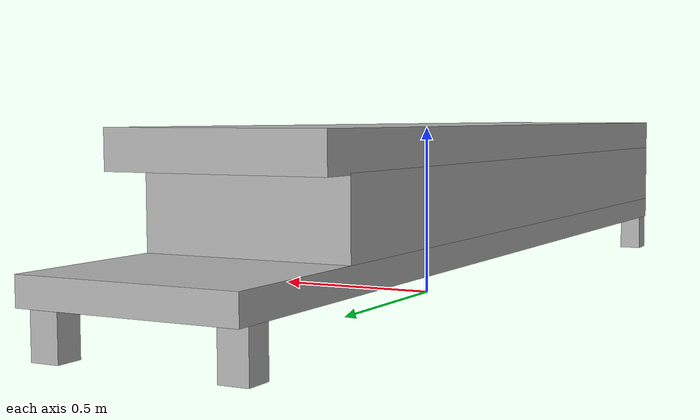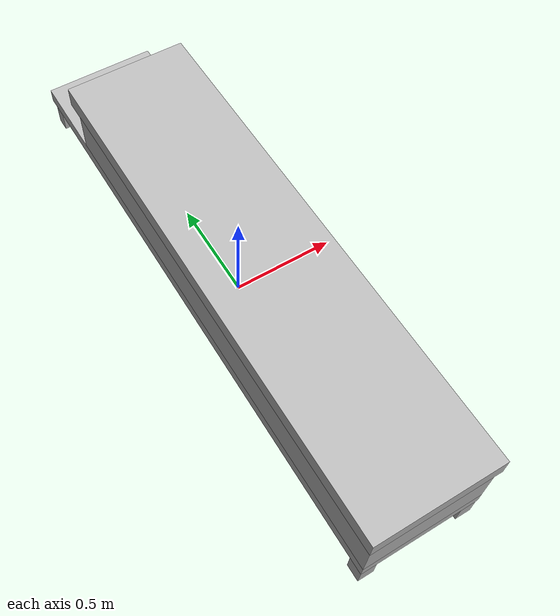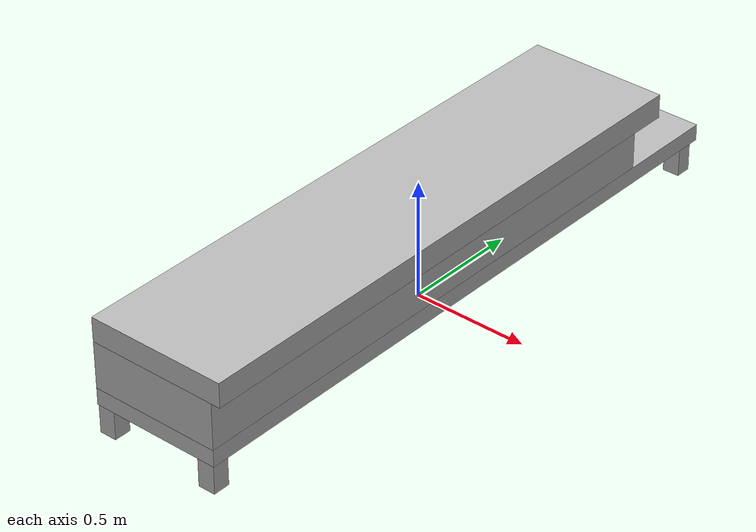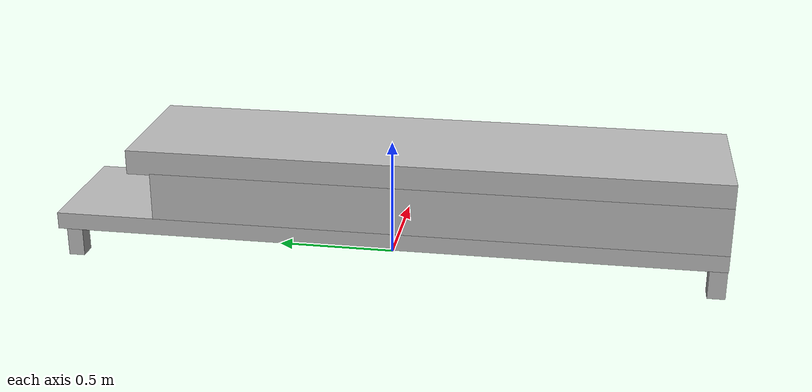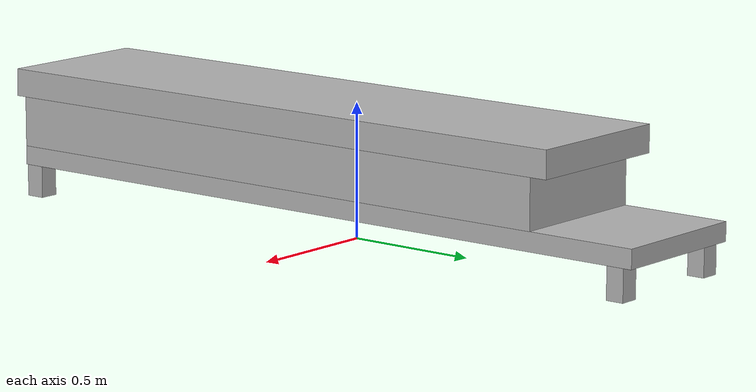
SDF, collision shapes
<?xml version="1.0" ?>
<sdf version="1.6">
  <model name="aws_robomaker_residential_TVCabinet_01">
    <link name="link">

      <inertial>
        <mass>59.2</mass>

        <inertia>
          <ixx>30.4</ixx>
          <ixy>0</ixy>
          <ixz>0</ixz>
          <iyy>2.56</iyy>
          <iyz>0</iyz>
          <izz>31.38</izz>
        </inertia>

      </inertial>

      <collision name="aws_tvcabinet_01_collision_collider_box">
        <pose>-0.01158 0.001218 0.173305 0.0 -0.0 0.0</pose>
        <geometry>
          <box>
            <size>0.559922 2.796524 0.071322</size>
          </box>
        </geometry>
      </collision>
      <collision name="aws_tvcabinet_01_collision_collider_box.001">
        <pose>-0.01158 -0.210066 0.310106 0.0 -0.0 0.0</pose>
        <geometry>
          <box>
            <size>0.559922 2.373957 0.203026</size>
          </box>
        </geometry>
      </collision>
      <collision name="aws_tvcabinet_01_collision_collider_box.002">
        <pose>0.009077 -0.161338 0.458343 0.0 -0.0 0.0</pose>
        <geometry>
          <box>
            <size>0.601235 2.471413 0.102932</size>
          </box>
        </geometry>
      </collision>
      <collision name="aws_tvcabinet_01_collision_collider_box.003">
        <pose>-0.250972 -1.358847 0.080438 0.0 -0.0 0.0</pose>
        <geometry>
          <box>
            <size>0.073914 0.072494 0.127337</size>
          </box>
        </geometry>
      </collision>
      <collision name="aws_tvcabinet_01_collision_collider_box.004">
        <pose>0.22672 -1.358847 0.080438 0.0 -0.0 0.0</pose>
        <geometry>
          <box>
            <size>0.073914 0.072494 0.127337</size>
          </box>
        </geometry>
      </collision>
      <collision name="aws_tvcabinet_01_collision_collider_box.005">
        <pose>-0.250972 1.329471 0.080438 0.0 -0.0 0.0</pose>
        <geometry>
          <box>
            <size>0.073914 0.067975 0.127337</size>
          </box>
        </geometry>
      </collision>
      <collision name="aws_tvcabinet_01_collision_collider_box.006">
        <pose>0.22672 1.329471 0.080438 0.0 -0.0 0.0</pose>
        <geometry>
          <box>
            <size>0.073914 0.067975 0.127337</size>
          </box>
        </geometry>
      </collision>

      <visual name="visual">
        <geometry>
          <mesh>
            <uri>model://aws_robomaker_residential_TVCabinet_01/meshes/aws_TVCabinet_01_visual.DAE</uri>
          </mesh>
        </geometry>
        <meta> <layer> 1 </layer></meta>
      </visual>
    </link>
  <static>1</static>
  </model>
</sdf>
